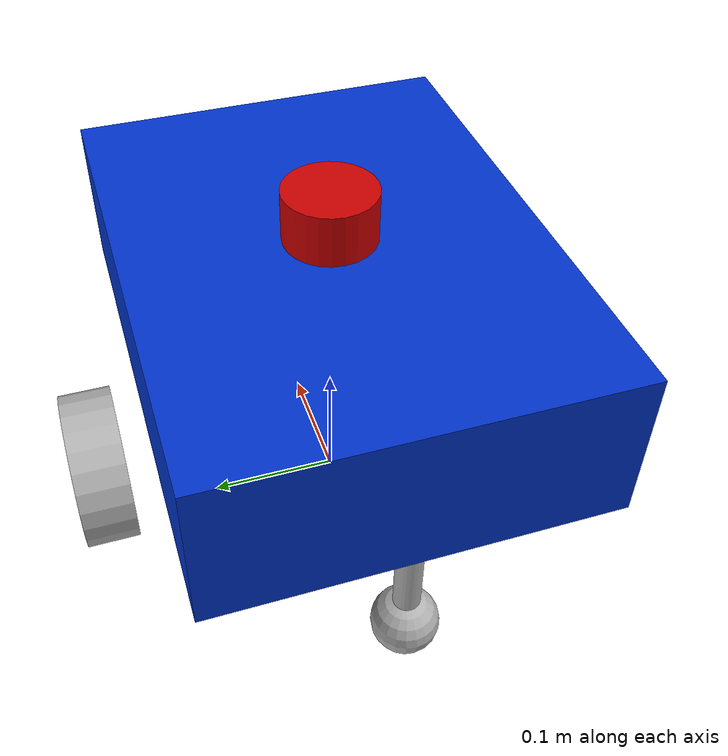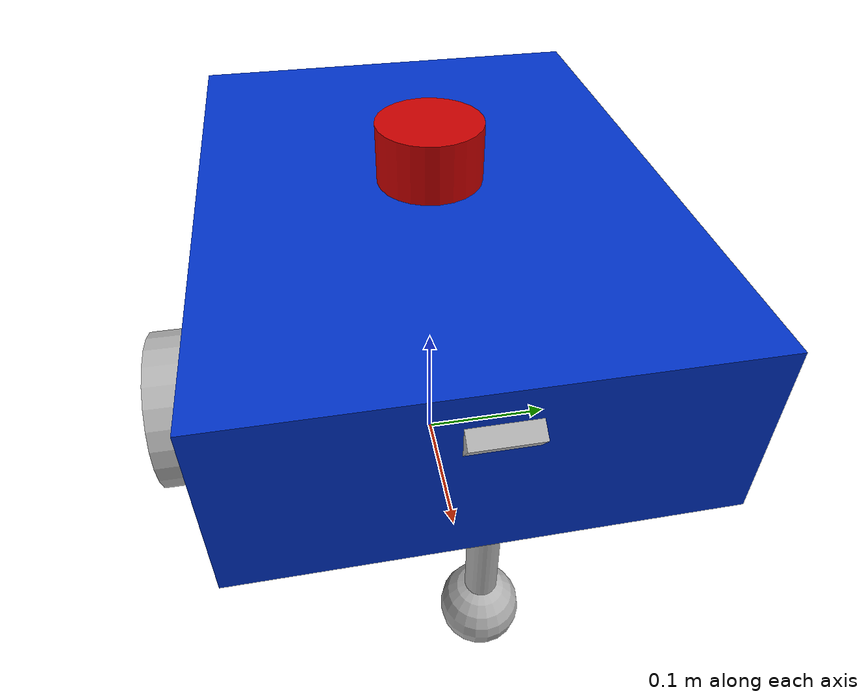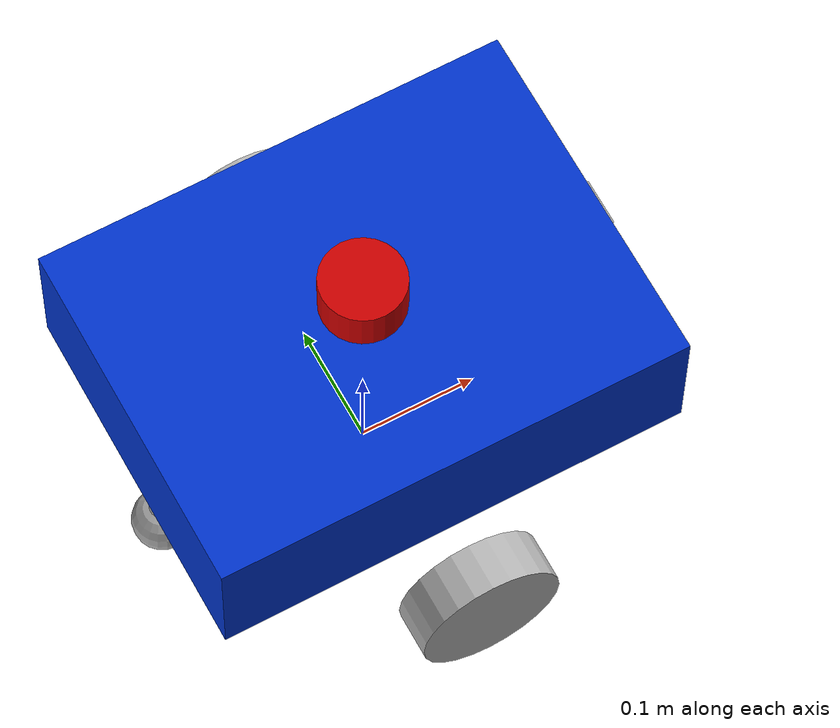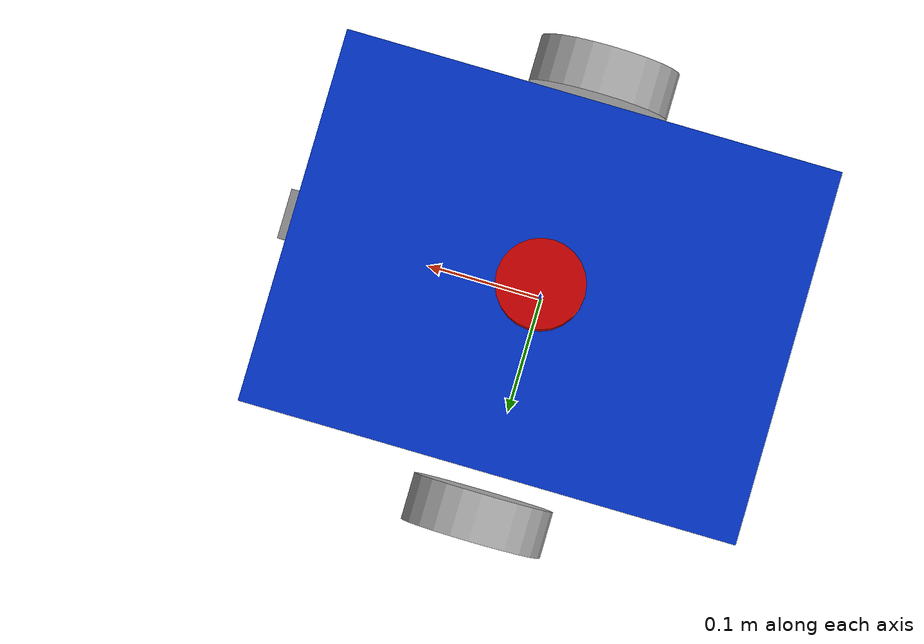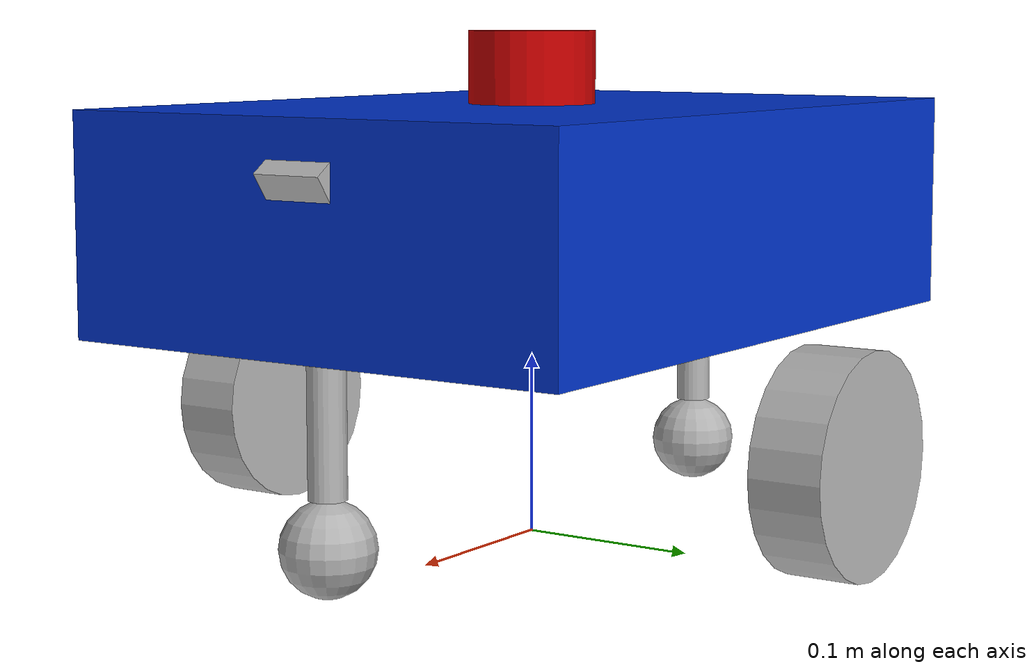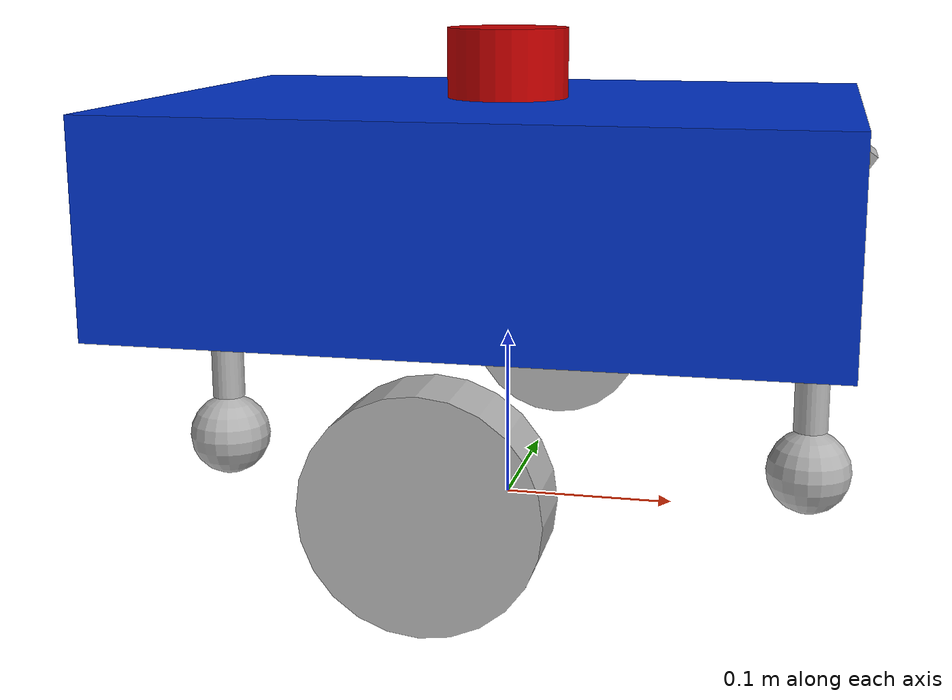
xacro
<?xml version="1.0" ?>
<robot name="my_robot2" xmlns:xacro="http://www.ros.org/wiki/xacro">

  <xacro:include filename="$(find agv_v1_description)/urdf/materials.xacro" />

  <!-- ===================== dimensions (metres, kg) ===================== -->
  <xacro:property name="body_len"      value="0.40"/>
  <xacro:property name="body_wid"      value="0.30"/>
  <xacro:property name="body_hgt"      value="0.12"/>
  <xacro:property name="clearance"     value="0.12"/>   <!-- floor to body underside -->
  <xacro:property name="body_mass"     value="15.0"/>

  <xacro:property name="wheel_r"       value="0.06"/>
  <xacro:property name="wheel_w"       value="0.04"/>
  <xacro:property name="wheel_y"       value="0.19"/>   <!-- axle centre to wheel centre -->
  <xacro:property name="wheel_mass"    value="1.0"/>

  <xacro:property name="caster_r"      value="0.025"/>
  <xacro:property name="caster_x"      value="0.18"/>   <!-- front +x, rear -x -->
  <xacro:property name="caster_mass"   value="0.2"/>

  <xacro:property name="lidar_r"       value="0.035"/>
  <xacro:property name="lidar_h"       value="0.04"/>

  <xacro:property name="cam_front_z"   value="0.20"/>   <!-- height above floor -->
  <xacro:property name="cam_front_tilt" value="0.6109"/> <!-- 35 deg down -->
  <xacro:property name="cam_down_z"    value="0.11"/>   <!-- lens height above floor -->

  <xacro:property name="body_z" value="${clearance + body_hgt/2}"/>
  <xacro:property name="body_top" value="${clearance + body_hgt}"/>

  <!-- ===================== helpers ===================== -->
  <xacro:macro name="box_inertia" params="m x y z *origin">
    <inertial>
      <xacro:insert_block name="origin"/>
      <mass value="${m}"/>
      <inertia ixx="${m*(y*y+z*z)/12}" iyy="${m*(x*x+z*z)/12}" izz="${m*(x*x+y*y)/12}"
               ixy="0" ixz="0" iyz="0"/>
    </inertial>
  </xacro:macro>

  <!-- ===================== base ===================== -->
  <link name="base_footprint"/>

  <joint name="base_joint" type="fixed">
    <parent link="base_footprint"/>
    <child link="base_link"/>
    <origin xyz="0 0 0" rpy="0 0 0"/>
  </joint>

  <link name="base_link">
    <xacro:box_inertia m="${body_mass}" x="${body_len}" y="${body_wid}" z="${body_hgt}">
      <origin xyz="0 0 ${body_z}" rpy="0 0 0"/>
    </xacro:box_inertia>
    <visual>
      <origin xyz="0 0 ${body_z}" rpy="0 0 0"/>
      <geometry><box size="${body_len} ${body_wid} ${body_hgt}"/></geometry>
      <material name="body_blue"/>
    </visual>
    <collision>
      <origin xyz="0 0 ${body_z}" rpy="0 0 0"/>
      <geometry><box size="${body_len} ${body_wid} ${body_hgt}"/></geometry>
    </collision>
    <!-- caster legs (visual only, hang from the body underside) -->
    <visual>
      <origin xyz="${caster_x} 0 ${(clearance + 2*caster_r)/2}" rpy="0 0 0"/>
      <geometry><cylinder radius="0.01" length="${clearance - 2*caster_r}"/></geometry>
      <material name="silver"/>
    </visual>
    <visual>
      <origin xyz="${-caster_x} 0 ${(clearance + 2*caster_r)/2}" rpy="0 0 0"/>
      <geometry><cylinder radius="0.01" length="${clearance - 2*caster_r}"/></geometry>
      <material name="silver"/>
    </visual>
  </link>

  <!-- ===================== drive wheels (centre axle) ===================== -->
  <xacro:macro name="wheel" params="side y">
    <link name="${side}_wheel_1">
      <inertial>
        <origin xyz="0 0 0" rpy="0 0 0"/>
        <mass value="${wheel_mass}"/>
        <!-- solid cylinder, spin axis = y -->
        <inertia ixx="${wheel_mass*(3*wheel_r*wheel_r + wheel_w*wheel_w)/12}"
                 iyy="${wheel_mass*wheel_r*wheel_r/2}"
                 izz="${wheel_mass*(3*wheel_r*wheel_r + wheel_w*wheel_w)/12}"
                 ixy="0" ixz="0" iyz="0"/>
      </inertial>
      <visual>
        <origin xyz="0 0 0" rpy="${pi/2} 0 0"/>
        <geometry><cylinder radius="${wheel_r}" length="${wheel_w}"/></geometry>
        <material name="black"/>
      </visual>
      <collision>
        <origin xyz="0 0 0" rpy="${pi/2} 0 0"/>
        <geometry><cylinder radius="${wheel_r}" length="${wheel_w}"/></geometry>
      </collision>
    </link>
    <joint name="${side}_wheel_joint" type="continuous">
      <origin xyz="0 ${y} ${wheel_r}" rpy="0 0 0"/>
      <parent link="base_link"/>
      <child link="${side}_wheel_1"/>
      <axis xyz="0 1 0"/>
    </joint>
  </xacro:macro>

  <xacro:wheel side="left"  y="${wheel_y}"/>
  <xacro:wheel side="right" y="${-wheel_y}"/>

  <!-- ===================== casters (front + rear) ===================== -->
  <xacro:macro name="caster" params="name x">
    <link name="${name}">
      <inertial>
        <origin xyz="0 0 0" rpy="0 0 0"/>
        <mass value="${caster_mass}"/>
        <inertia ixx="${0.4*caster_mass*caster_r*caster_r}" iyy="${0.4*caster_mass*caster_r*caster_r}"
                 izz="${0.4*caster_mass*caster_r*caster_r}" ixy="0" ixz="0" iyz="0"/>
      </inertial>
      <visual>
        <geometry><sphere radius="${caster_r}"/></geometry>
        <material name="silver"/>
      </visual>
      <collision>
        <geometry><sphere radius="${caster_r}"/></geometry>
      </collision>
    </link>
    <joint name="${name}_joint" type="fixed">
      <origin xyz="${x} 0 ${caster_r}" rpy="0 0 0"/>
      <parent link="base_link"/>
      <child link="${name}"/>
    </joint>
  </xacro:macro>

  <xacro:caster name="caster_wheel_1"    x="${caster_x}"/>
  <xacro:caster name="caster_wheel_rear" x="${-caster_x}"/>

  <!-- ===================== lidar (on top, centred) ===================== -->
  <link name="lidar_1">
    <inertial>
      <origin xyz="0 0 0" rpy="0 0 0"/>
      <mass value="0.2"/>
      <inertia ixx="0.0001" iyy="0.0001" izz="0.0001" ixy="0" ixz="0" iyz="0"/>
    </inertial>
    <visual>
      <geometry><cylinder radius="${lidar_r}" length="${lidar_h}"/></geometry>
      <material name="lidar_red"/>
    </visual>
    <collision>
      <geometry><cylinder radius="${lidar_r}" length="${lidar_h}"/></geometry>
    </collision>
  </link>
  <joint name="lidar_joint" type="fixed">
    <origin xyz="0 0 ${body_top + lidar_h/2}" rpy="0 0 0"/>
    <parent link="base_link"/>
    <child link="lidar_1"/>
  </joint>

  <xacro:macro name="camera" params="name xyz rpy">
    <link name="${name}_link">
      <inertial>
        <origin xyz="-0.01 0 0" rpy="0 0 0"/>
        <mass value="0.05"/>
        <inertia ixx="0.00001" iyy="0.00001" izz="0.00001" ixy="0" ixz="0" iyz="0"/>
      </inertial>
      <visual>
        <origin xyz="-0.0105 0 0" rpy="0 0 0"/>
        <geometry><box size="0.02 0.04 0.03"/></geometry>
        <material name="black"/>
      </visual>
    </link>
    <joint name="${name}_joint" type="fixed">
      <origin xyz="${xyz}" rpy="${rpy}"/>
      <parent link="base_link"/>
      <child link="${name}_link"/>
    </joint>
    <link name="${name}_optical_frame"/>
    <joint name="${name}_optical_joint" type="fixed">
      <origin xyz="0 0 0" rpy="${-pi/2} 0 ${-pi/2}"/>
      <parent link="${name}_link"/>
      <child link="${name}_optical_frame"/>
    </joint>
  </xacro:macro>

  <!-- front: on the front face, tilted 35 deg down to see floor tags ahead -->
  <xacro:camera name="camera_front" xyz="${body_len/2 + 0.001} 0 ${cam_front_z}" rpy="0 ${cam_front_tilt} 0"/>
  <!-- down: under the body at the robot centre, looking straight down -->
  <xacro:camera name="camera_down" xyz="0 0 ${cam_down_z}" rpy="0 ${pi/2} 0"/>

  <xacro:include filename="$(find agv_v1_description)/urdf/ign_plugins.gazebo.xacro" />

</robot>

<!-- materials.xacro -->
<robot name="ros_bot" xmlns:xacro="http://www.ros.org/wiki/xacro" >

<material name="silver">
  <color rgba="0.700 0.700 0.700 1.000"/>
</material>

  <!-- Robot Body (Blue) -->
<material name="body_blue">
  <color rgba="0.0 0.2 0.8 1.0"/> <!-- Deep Blue -->
</material>

  <!-- Lidar (Red) -->
<material name="lidar_red">
  <color rgba="0.8 0.0 0.0 1.0"/> <!-- Bright Red -->
</material>

  <!-- Wheels & Camera (Black) -->
<material name="black">
  <color rgba="0.700 0.700 0.700 1.000"/>
</material>

</robot>
